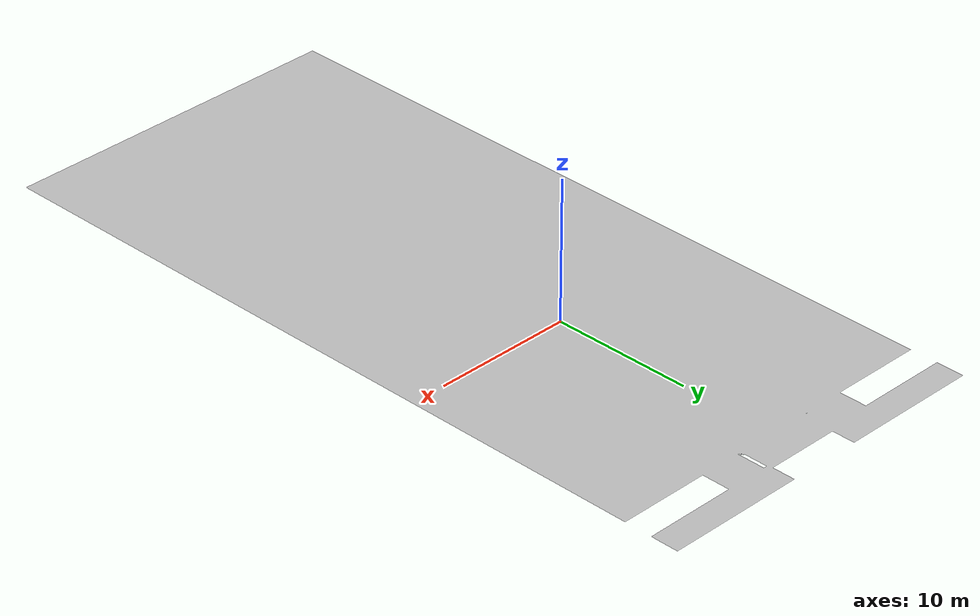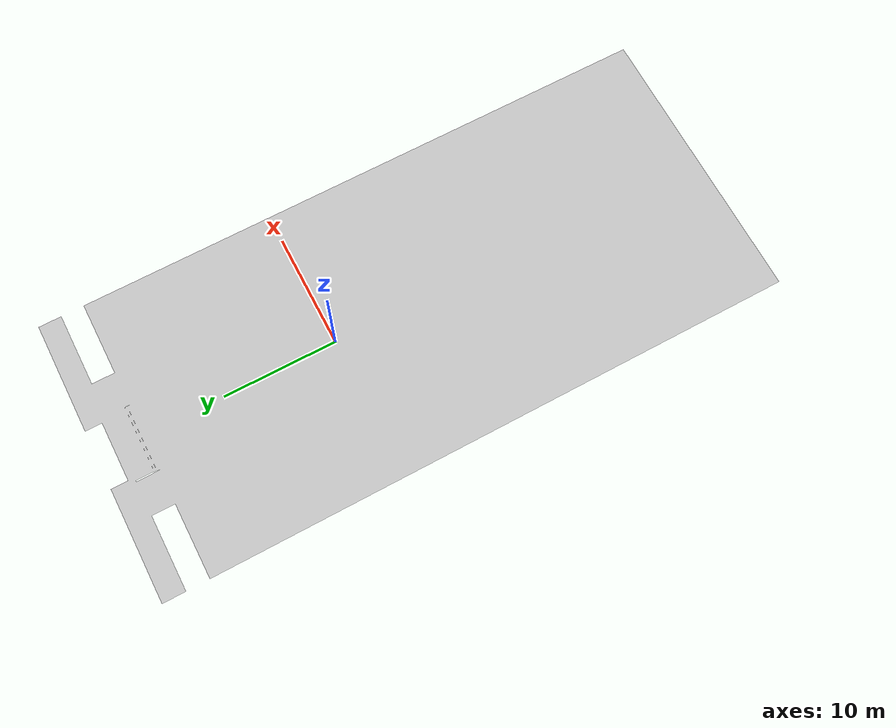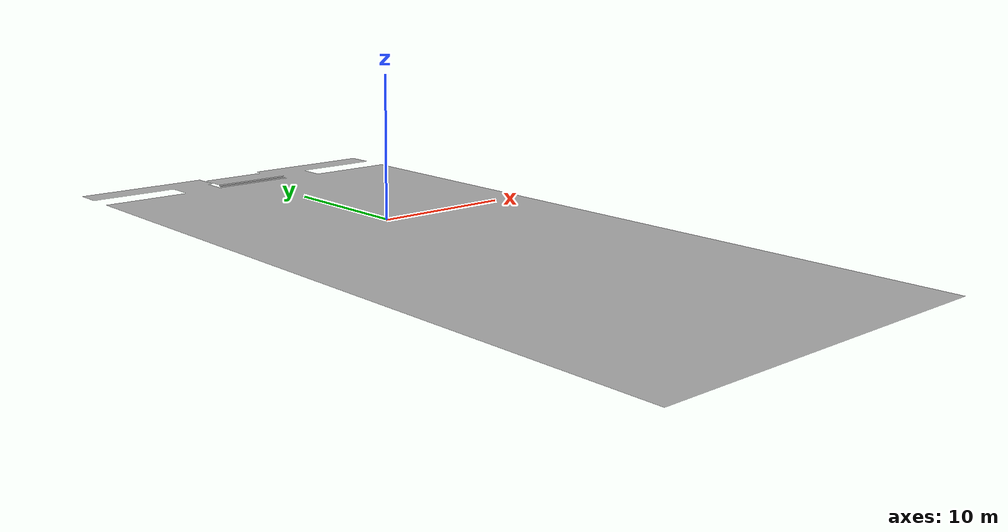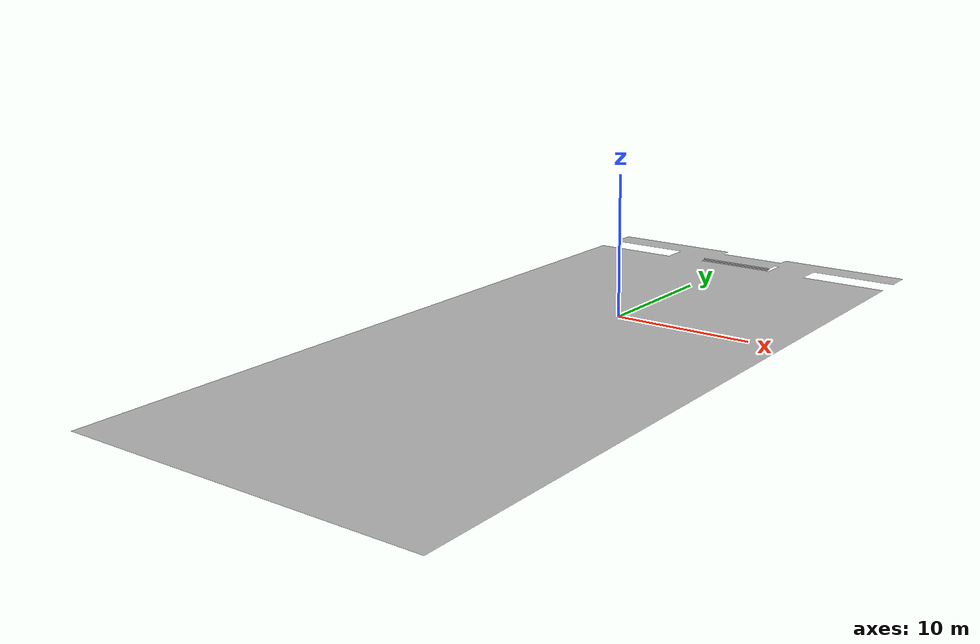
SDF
<?xml version="1.0" ?>
<sdf version="1.6">
  <model name="aws_robomaker_hospital_floor_01_floor">
    <link name="link">
      <visual name="visual">
        <geometry>
          <mesh>
            <uri>model://aws_robomaker_hospital_floor_01_floor/meshes/aws_robomaker_hospital_floor_01_floor_visual.dae</uri>
          </mesh>
        </geometry>
      </visual>
      <collision name="collision">
        <geometry>
          <mesh>
            <uri>model://aws_robomaker_hospital_floor_01_floor/meshes/aws_robomaker_hospital_floor_01_floor_collision.dae</uri>
          </mesh>
        </geometry>
        <surface>
          <friction>
            <ode>
              <mu>100</mu>
              <mu2>50</mu2>
            </ode>
          </friction>
        </surface>
      </collision>
    </link>
    <static>1</static>
  </model>
</sdf>
